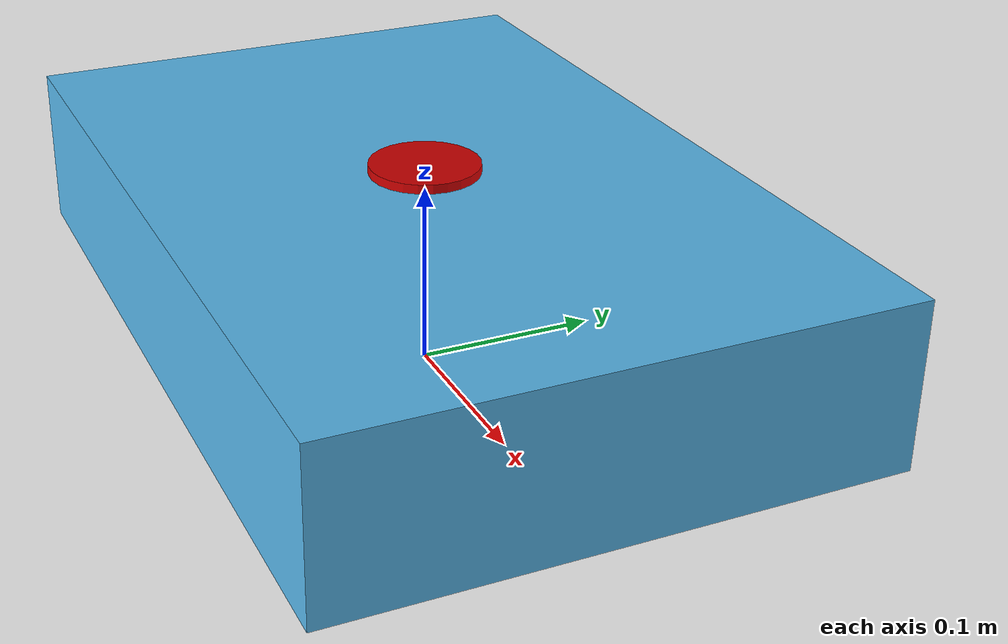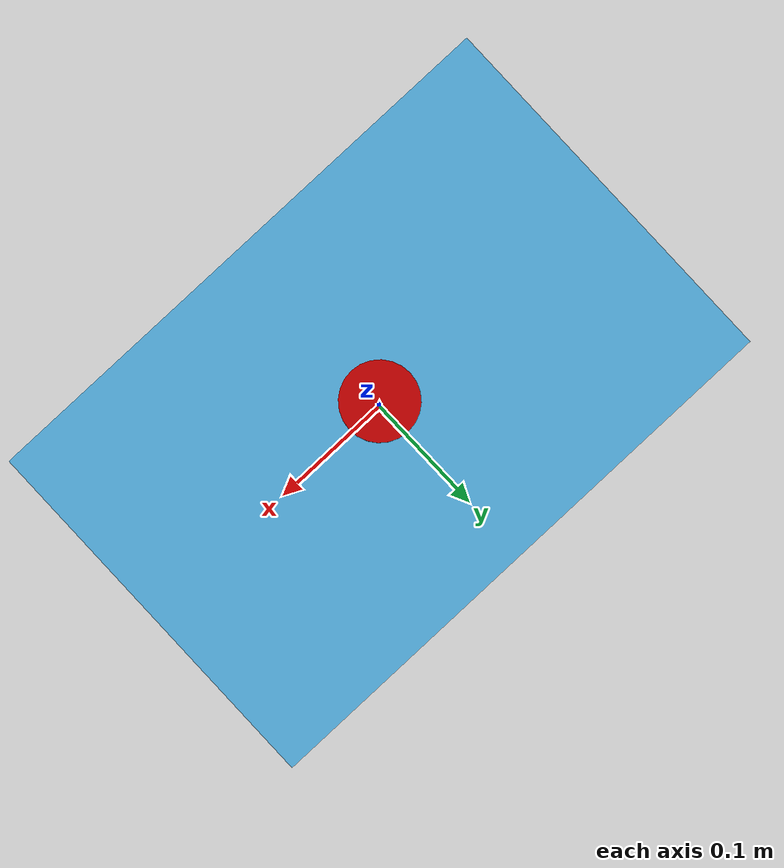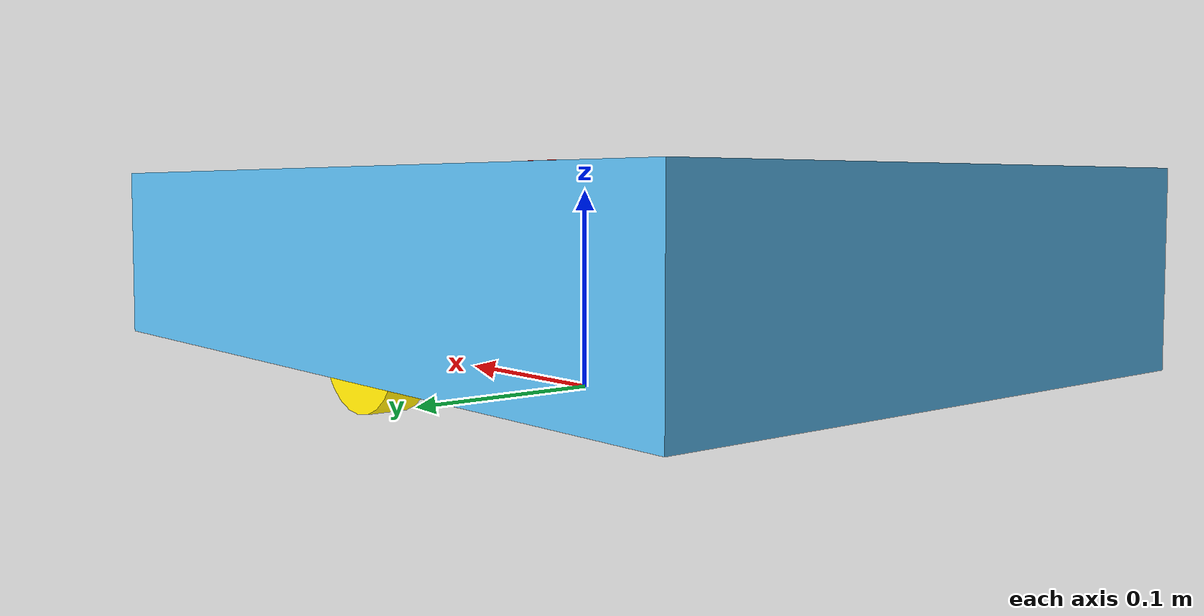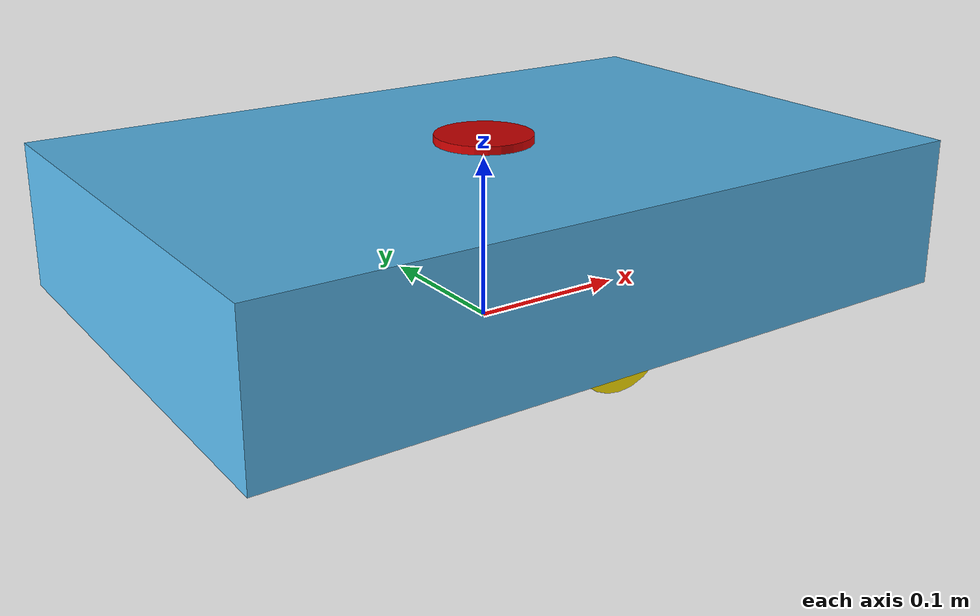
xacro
<?xml version="1.0" ?>

<robot name="mobile_robot" xmlns:xacro="http://ros.org/wiki/xacro">

<!-- Body geometry -->
<xacro:property name="body_link_x_dim" value="0.30" />
<xacro:property name="body_link_y_dim" value="0.45" />
<xacro:property name="body_link_z_dim" value="0.09" />

<!-- Wheel geometry -->
<xacro:property name="wheel_link_radius" value="0.0325" />
<xacro:property name="wheel_link_length" value="0.02" />
<xacro:property name="wheel_link_x_location" value="0.12" />

<!-- Sphere geometry -->
<xacro:property name="sphere_radius" value="0.02" />
<xacro:property name="sphere_joint_y" value="-0.15" />
<xacro:property name="z_sphere" value="-0.01" />

<xacro:property name="sphere_radius_2" value="0.02" />
<xacro:property name="sphere_joint_y_2" value="0.15" />
<xacro:property name="z_sphere_2" value="-0.01" />

<!-- Constants -->
<xacro:property name="pi_const" value="3.1415926535898" />
<xacro:property name="half_pi_const" value="1.5707963" />

<!-- Material colors -->
<material name="white">
	<color rgba="1.0 1.0 1.0 1.0"/>
</material>

<material name="yellow">
	<color rgba="1 0.9 0.0 1.0"/>
</material>

<material name="green">
	<color rgba="0.0 0.8 0.0 1.0"/>
</material>

<material name="red">
	<color rgba="0.8 0.0 0.0 1.0"/>
</material>

<link name="base_frame"/>

<joint name="base_joint" type="fixed">
	<origin xyz="0 0 0" rpy="0 0 ${half_pi_const}" />
	<parent link="base_frame"/>
	<child link="base_link" />
</joint>

<link name="base_link">
 	<visual>
		<geometry>
			<box size="${body_link_x_dim} ${body_link_y_dim} ${body_link_z_dim}" />
		</geometry>
	 <origin xyz="0 0 0.065" rpy="0 0 0"/>
      </visual>
</link>

<joint name="left_wheel_joint" type="fixed">
	<origin xyz="-${wheel_link_x_location} 0 0" rpy="0 0 0"/>
	<parent link="base_link"/>
	<child link="left_wheel_link"/>
	<axis xyz="1 0 0"/>
	<limit effort="100" velocity="100"/>
	<joint_properties damping="0.0" friction="0.0"/>
</joint>

<link name="left_wheel_link">
	<visual>
		<origin xyz="0 0 0.0325" rpy="0 ${half_pi_const} 0" />
		<geometry>
			<cylinder radius="${wheel_link_radius}" length = "${wheel_link_length}"/>
		</geometry>
     	 	<material name ="yellow" />
	</visual>
</link>

<link name="right_wheel_link">
	<visual>
		<origin xyz="0 0 0.0325" rpy="0 ${half_pi_const} 0" />
		<geometry>
			<cylinder radius="${wheel_link_radius}" length = "${wheel_link_length}"/>
		</geometry>
		<material name ="yellow" />
	</visual>
</link>

<joint name="right_wheel_joint" type="fixed">
	<origin xyz="${wheel_link_x_location} 0 0" rpy="0 0 0"/>
	<parent link="base_link"/>
	<child link="right_wheel_link"/>
	<axis xyz="1 0 0"/>
</joint>

<joint name="robot_caster_back_joint" type="fixed">
	<parent link="base_link"/>
	<child link="robot_caster_back_link"/>
	<origin xyz="0 ${sphere_joint_y} 0.03" rpy="0 0 0"/>
</joint>

<link name="robot_caster_back_link">
	<origin xyz="0 0 0"/>
	<visual>
		<origin xyz="0 0 ${z_sphere}" rpy="0 0 0" />
		<geometry>
			<sphere radius="${sphere_radius}" />
		</geometry>
		<material name ="green" />
	</visual>
</link>

<joint name="robot_caster_back_joint_2" type="fixed">
	<parent link="base_link"/>
	<child link="robot_caster_back_link_2"/>
	<origin xyz="0 ${sphere_joint_y_2} 0.03" rpy="0 0 0"/>
</joint>

<link name="robot_caster_back_link_2">
	<origin xyz="0 0 0"/>
	<visual>
		<origin xyz="0 0 ${z_sphere_2}" rpy="0 0 0" />
		<geometry>
			<sphere radius="${sphere_radius_2}" />
		</geometry>
		<material name ="green" />
	</visual>
</link>

<joint name="laser_joint" type="fixed">
    <parent link="base_link"/>
    <child link="laser"/>
    <origin xyz="0 0 0.1" rpy="0 0 0"/>
</joint>

<link name="laser">
    <visual>
        <geometry>
            <cylinder radius="0.03" length="0.03"/>
        </geometry>
        <material name="red"/>
    </visual>
    <visual>
        <origin xyz="0 0 -0.03"/>
        <geometry>
            <cylinder radius="0.01" length="0.03"/>
        </geometry>
        <material name="red"/>
    </visual>
    <collision>
        <geometry>
            <cylinder radius="0.05" length="0.04"/>
        </geometry>
    </collision>
</link>

</robot>
